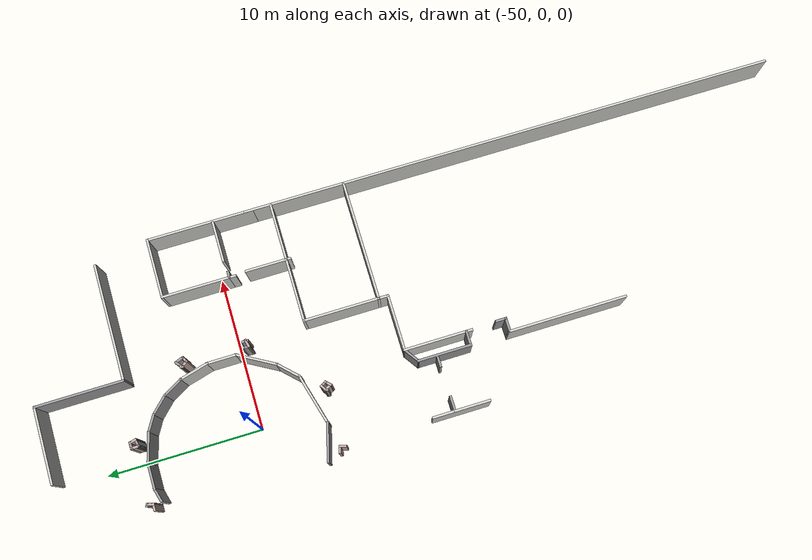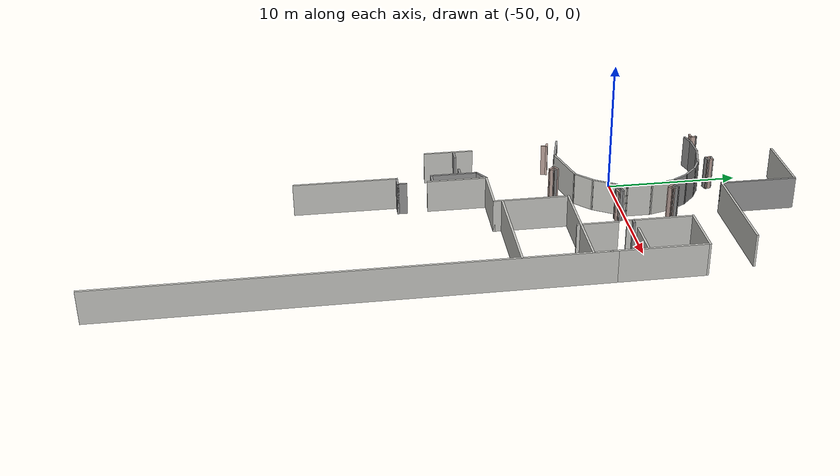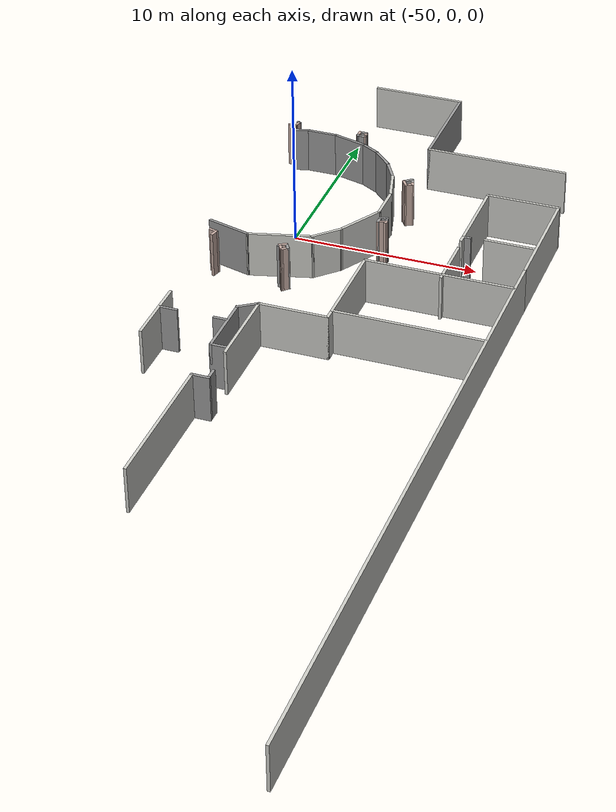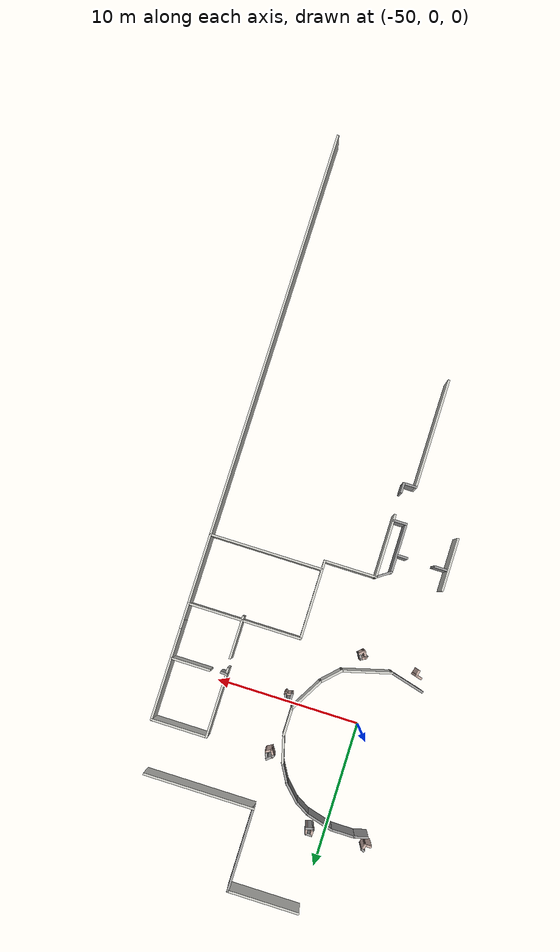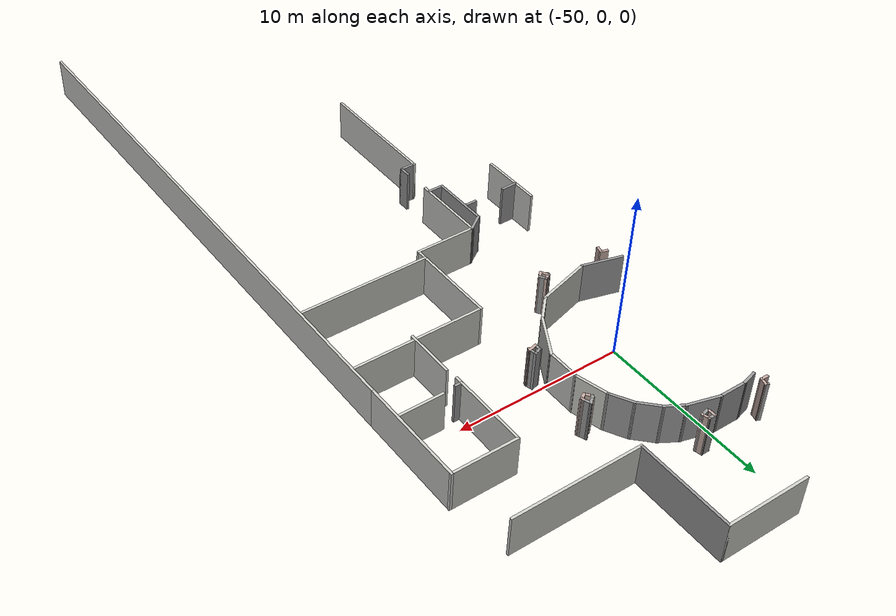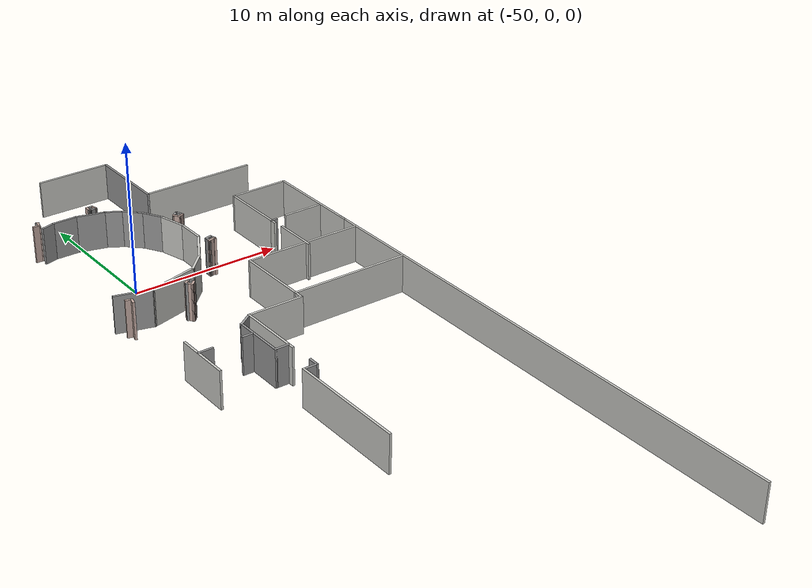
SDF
<sdf version="1.7">
 <model name="TD_n1">
  <pose>-37.6178 -12.8947 0 0 -0 0</pose>
  <link name="Wall_0">
   <collision name="Wall_0_Collision">
    <geometry><box><size>35.5 0.15 2.5</size></box></geometry>
    <pose>0 0 1.25 0 -0 0</pose>
   </collision>
   <visual name="Wall_0_Visual">
    <pose>0 0 1.25 0 -0 0</pose>
    <geometry><box><size>35.5 0.15 2.5</size></box></geometry>
    <material>
     <script><uri>file://media/materials/scripts/gazebo.material</uri><name>Gazebo/CeilingTiled</name></script>
     <ambient>1 1 1 1</ambient>
    </material>
    <meta><layer>0</layer></meta>
   </visual>
   <pose>0.95718 -7.55 0 0 -0 -1.5708</pose>
  </link>
  <link name="Wall_136">
   <collision name="Wall_136_Collision">
    <geometry><box><size>3.75 0.15 2.5</size></box></geometry>
    <pose>0 0 1.25 0 -0 0</pose>
   </collision>
   <visual name="Wall_136_Visual">
    <pose>0 0 1.25 0 -0 0</pose>
    <geometry><box><size>3.75 0.15 2.5</size></box></geometry>
    <material>
     <script><uri>file://media/materials/scripts/gazebo.material</uri><name>Gazebo/CeilingTiled</name></script>
     <ambient>1 1 1 1</ambient>
    </material>
    <meta><layer>0</layer></meta>
   </visual>
   <pose>-15.0402 0.724999 0 0 -0 -1.5708</pose>
  </link>
  <link name="Wall_157">
   <collision name="Wall_157_Collision">
    <geometry><box><size>1 0.15 2.5</size></box></geometry>
    <pose>0 0 1.25 0 -0 0</pose>
   </collision>
   <visual name="Wall_157_Visual">
    <pose>0 0 1.25 0 -0 0</pose>
    <geometry><box><size>1 0.15 2.5</size></box></geometry>
    <material>
     <script><uri>file://media/materials/scripts/gazebo.material</uri><name>Gazebo/Grey</name></script>
     <ambient>1 1 1 1</ambient>
    </material>
    <meta><layer>0</layer></meta>
   </visual>
   <pose>-10.9975 -1.00817 0 0 -0 0</pose>
  </link>
  <link name="Wall_159">
   <collision name="Wall_159_Collision">
    <geometry><box><size>3.54074 0.15 2.5</size></box></geometry>
    <pose>0 0 1.25 0 -0 0</pose>
   </collision>
   <visual name="Wall_159_Visual">
    <pose>0 0 1.25 0 -0 0</pose>
    <geometry><box><size>3.54074 0.15 2.5</size></box></geometry>
    <material>
     <script><uri>file://media/materials/scripts/gazebo.material</uri><name>Gazebo/Grey</name></script>
     <ambient>1 1 1 1</ambient>
    </material>
    <meta><layer>0</layer></meta>
   </visual>
   <pose>-11.4225 0.687201 0 0 -0 -1.5708</pose>
  </link>
  <link name="Wall_161">
   <collision name="Wall_161_Collision">
    <geometry><box><size>1.23577 0.15 2.5</size></box></geometry>
    <pose>0 0 1.25 0 -0 0</pose>
   </collision>
   <visual name="Wall_161_Visual">
    <pose>0 0 1.25 0 -0 0</pose>
    <geometry><box><size>1.23577 0.15 2.5</size></box></geometry>
    <material>
     <script><uri>file://media/materials/scripts/gazebo.material</uri><name>Gazebo/Grey</name></script>
     <ambient>1 1 1 1</ambient>
    </material>
    <meta><layer>0</layer></meta>
   </visual>
   <pose>-10.9749 2.68981 0 0 -0 0.601557</pose>
  </link>
  <link name="Wall_183">
   <collision name="Wall_183_Collision">
    <geometry><box><size>5 0.15 2.5</size></box></geometry>
    <pose>0 0 1.25 0 -0 0</pose>
   </collision>
   <visual name="Wall_183_Visual">
    <pose>0 0 1.25 0 -0 0</pose>
    <geometry><box><size>5 0.15 2.5</size></box></geometry>
    <material>
     <script><uri>file://media/materials/scripts/gazebo.material</uri><name>Gazebo/CeilingTiled</name></script>
     <ambient>1 1 1 1</ambient>
    </material>
    <meta><layer>0</layer></meta>
   </visual>
   <pose>-9.72371 25.6692 0 0 -0 0</pose>
  </link>
  <link name="Wall_184">
   <collision name="Wall_184_Collision">
    <geometry><box><size>5.75 0.15 2.5</size></box></geometry>
    <pose>0 0 1.25 0 -0 0</pose>
   </collision>
   <visual name="Wall_184_Visual">
    <pose>0 0 1.25 0 -0 0</pose>
    <geometry><box><size>5.75 0.15 2.5</size></box></geometry>
    <material>
     <script><uri>file://media/materials/scripts/gazebo.material</uri><name>Gazebo/Grey</name></script>
     <ambient>1 1 1 1</ambient>
    </material>
    <meta><layer>0</layer></meta>
   </visual>
   <pose>-7.29871 22.8692 0 0 -0 -1.5708</pose>
  </link>
  <link name="Wall_185">
   <collision name="Wall_185_Collision">
    <geometry><box><size>7.75 0.15 2.5</size></box></geometry>
    <pose>0 0 1.25 0 -0 0</pose>
   </collision>
   <visual name="Wall_185_Visual">
    <pose>0 0 1.25 0 -0 0</pose>
    <geometry><box><size>7.75 0.15 2.5</size></box></geometry>
    <material>
     <script><uri>file://media/materials/scripts/gazebo.material</uri><name>Gazebo/CeilingTiled</name></script>
     <ambient>1 1 1 1</ambient>
    </material>
    <meta><layer>0</layer></meta>
   </visual>
   <pose>-3.49871 20.0692 0 0 -0 0</pose>
  </link>
  <link name="Wall_187">
   <collision name="Wall_187_Collision">
    <geometry><box><size>3 0.15 2.5</size></box></geometry>
    <pose>0 0 1.25 0 -0 0</pose>
   </collision>
   <visual name="Wall_187_Visual">
    <pose>0 0 1.25 0 -0 0</pose>
    <geometry><box><size>3 0.15 2.5</size></box></geometry>
    <material>
     <script><uri>file://media/materials/scripts/gazebo.material</uri><name>Gazebo/CeilingTiled</name></script>
     <ambient>1 1 1 1</ambient>
    </material>
    <meta><layer>0</layer></meta>
   </visual>
   <pose>-2.81602 9.63563 0 0 -0 1.5708</pose>
  </link>
  <link name="Wall_190">
   <collision name="Wall_190_Collision">
    <geometry><box><size>7 0.15 2.5</size></box></geometry>
    <pose>0 0 1.25 0 -0 0</pose>
   </collision>
   <visual name="Wall_190_Visual">
    <pose>0 0 1.25 0 -0 0</pose>
    <geometry><box><size>7 0.15 2.5</size></box></geometry>
    <material>
     <script><uri>file://media/materials/scripts/gazebo.material</uri><name>Gazebo/CeilingTiled</name></script>
     <ambient>1 1 1 1</ambient>
    </material>
    <meta><layer>0</layer></meta>
   </visual>
   <pose>0.954552 13.0938 0 0 -0 1.5708</pose>
  </link>
  <link name="Wall_191">
   <collision name="Wall_191_Collision">
    <geometry><box><size>4 0.15 2.5</size></box></geometry>
    <pose>0 0 1.25 0 -0 0</pose>
   </collision>
   <visual name="Wall_191_Visual">
    <pose>0 0 1.25 0 -0 0</pose>
    <geometry><box><size>4 0.15 2.5</size></box></geometry>
    <material>
     <script><uri>file://media/materials/scripts/gazebo.material</uri><name>Gazebo/CeilingTiled</name></script>
     <ambient>1 1 1 1</ambient>
    </material>
    <meta><layer>0</layer></meta>
   </visual>
   <pose>-0.970448 16.5188 0 0 -0 3.14159</pose>
  </link>
  <link name="Wall_192">
   <collision name="Wall_192_Collision">
    <geometry><box><size>4.5 0.15 2.5</size></box></geometry>
    <pose>0 0 1.25 0 -0 0</pose>
   </collision>
   <visual name="Wall_192_Visual">
    <pose>0 0 1.25 0 -0 0</pose>
    <geometry><box><size>4.5 0.15 2.5</size></box></geometry>
    <material>
     <script><uri>file://media/materials/scripts/gazebo.material</uri><name>Gazebo/CeilingTiled</name></script>
     <ambient>1 1 1 1</ambient>
    </material>
    <meta><layer>0</layer></meta>
   </visual>
   <pose>-2.89545 14.3438 0 0 -0 -1.5708</pose>
  </link>
  <link name="Wall_197">
   <collision name="Wall_197_Collision">
    <geometry><box><size>0.5 0.15 2.5</size></box></geometry>
    <pose>0 0 1.25 0 -0 0</pose>
   </collision>
   <visual name="Wall_197_Visual">
    <pose>0 0 1.25 0 -0 0</pose>
    <geometry><box><size>0.5 0.15 2.5</size></box></geometry>
    <material>
     <script><uri>file://media/materials/scripts/gazebo.material</uri><name>Gazebo/Grey</name></script>
     <ambient>1 1 1 1</ambient>
    </material>
    <meta><layer>0</layer></meta>
   </visual>
   <pose>-2.72045 12.1688 0 0 -0 0</pose>
  </link>
  <link name="Wall_199">
   <collision name="Wall_199_Collision">
    <geometry><box><size>0.515229 0.15 2.5</size></box></geometry>
    <pose>0 0 1.25 0 -0 0</pose>
   </collision>
   <visual name="Wall_199_Visual">
    <pose>0 0 1.25 0 -0 0</pose>
    <geometry><box><size>0.515229 0.15 2.5</size></box></geometry>
    <material>
     <script><uri>file://media/materials/scripts/gazebo.material</uri><name>Gazebo/CeilingTiled</name></script>
     <ambient>1 1 1 1</ambient>
    </material>
    <meta><layer>0</layer></meta>
   </visual>
   <pose>-2.89812 11.9862 0 0 -0 1.55618</pose>
  </link>
  <link name="Wall_201">
   <collision name="Wall_201_Collision">
    <geometry><box><size>2.75 0.15 2.5</size></box></geometry>
    <pose>0 0 1.25 0 -0 0</pose>
   </collision>
   <visual name="Wall_201_Visual">
    <pose>0 0 1.25 0 -0 0</pose>
    <geometry><box><size>2.75 0.15 2.5</size></box></geometry>
    <material>
     <script><uri>file://media/materials/scripts/gazebo.material</uri><name>Gazebo/CeilingTiled</name></script>
     <ambient>1 1 1 1</ambient>
    </material>
    <meta><layer>0</layer></meta>
   </visual>
   <pose>-0.437191 12.261 0 0 -0 0</pose>
  </link>
  <link name="Wall_203">
   <collision name="Wall_203_Collision">
    <geometry><box><size>1 0.15 2.5</size></box></geometry>
    <pose>0 0 1.25 0 -0 0</pose>
   </collision>
   <visual name="Wall_203_Visual">
    <pose>0 0 1.25 0 -0 0</pose>
    <geometry><box><size>1 0.15 2.5</size></box></geometry>
    <material>
     <script><uri>file://media/materials/scripts/gazebo.material</uri><name>Gazebo/Grey</name></script>
     <ambient>1 1 1 1</ambient>
    </material>
    <meta><layer>0</layer></meta>
   </visual>
   <pose>-14.5643 1.14455 0 0 -0 0</pose>
  </link>
  <link name="Wall_205">
   <collision name="Wall_205_Collision">
    <geometry><box><size>0.75 0.15 2.5</size></box></geometry>
    <pose>0 0 1.25 0 -0 0</pose>
   </collision>
   <visual name="Wall_205_Visual">
    <pose>0 0 1.25 0 -0 0</pose>
    <geometry><box><size>0.75 0.15 2.5</size></box></geometry>
    <material>
     <script><uri>file://media/materials/scripts/gazebo.material</uri><name>Gazebo/Grey</name></script>
     <ambient>1 1 1 1</ambient>
    </material>
    <meta><layer>0</layer></meta>
   </visual>
   <pose>-11.8306 1.16615 0 0 -0 0</pose>
  </link>
  <link name="Wall_217">
   <collision name="Wall_217_Collision">
    <geometry><box><size>1 0.15 2.5</size></box></geometry>
    <pose>0 0 1.25 0 -0 0</pose>
   </collision>
   <visual name="Wall_217_Visual">
    <pose>0 0 1.25 0 -0 0</pose>
    <geometry><box><size>1 0.15 2.5</size></box></geometry>
    <material>
     <script><uri>file://media/materials/scripts/gazebo.material</uri><name>Gazebo/Grey</name></script>
     <ambient>1 1 1 1</ambient>
    </material>
    <meta><layer>0</layer></meta>
   </visual>
   <pose>-14.6253 19.7187 0 0 -0 0.261799</pose>
  </link>
  <link name="Wall_218">
   <collision name="Wall_218_Collision">
    <geometry><box><size>1.75 0.15 2.5</size></box></geometry>
    <pose>0 0 1.25 0 -0 0</pose>
   </collision>
   <visual name="Wall_218_Visual">
    <pose>0 0 1.25 0 -0 0</pose>
    <geometry><box><size>1.75 0.15 2.5</size></box></geometry>
    <material>
     <script><uri>file://media/materials/scripts/gazebo.material</uri><name>Gazebo/Grey</name></script>
     <ambient>1 1 1 1</ambient>
    </material>
    <meta><layer>0</layer></meta>
   </visual>
   <pose>-13.4148 19.8287 0 0 -0 0</pose>
  </link>
  <link name="Wall_219">
   <collision name="Wall_219_Collision">
    <geometry><box><size>2 0.15 2.5</size></box></geometry>
    <pose>0 0 1.25 0 -0 0</pose>
   </collision>
   <visual name="Wall_219_Visual">
    <pose>0 0 1.25 0 -0 0</pose>
    <geometry><box><size>2 0.15 2.5</size></box></geometry>
    <material>
     <script><uri>file://media/materials/scripts/gazebo.material</uri><name>Gazebo/Grey</name></script>
     <ambient>1 1 1 1</ambient>
    </material>
    <meta><layer>0</layer></meta>
   </visual>
   <pose>-11.7213 19.5893 0 0 -0 -0.261799</pose>
  </link>
  <link name="Wall_221">
   <collision name="Wall_221_Collision">
    <geometry><box><size>1.25 0.15 2.5</size></box></geometry>
    <pose>0 0 1.25 0 -0 0</pose>
   </collision>
   <visual name="Wall_221_Visual">
    <pose>0 0 1.25 0 -0 0</pose>
    <geometry><box><size>1.25 0.15 2.5</size></box></geometry>
    <material>
     <script><uri>file://media/materials/scripts/gazebo.material</uri><name>Gazebo/Grey</name></script>
     <ambient>1 1 1 1</ambient>
    </material>
    <meta><layer>0</layer></meta>
   </visual>
   <pose>-10.3515 19.0749 0 0 -0 -0.523599</pose>
  </link>
  <link name="Wall_222">
   <collision name="Wall_222_Collision">
    <geometry><box><size>1.5 0.15 2.5</size></box></geometry>
    <pose>0 0 1.25 0 -0 0</pose>
   </collision>
   <visual name="Wall_222_Visual">
    <pose>0 0 1.25 0 -0 0</pose>
    <geometry><box><size>1.5 0.15 2.5</size></box></geometry>
    <material>
     <script><uri>file://media/materials/scripts/gazebo.material</uri><name>Gazebo/Grey</name></script>
     <ambient>1 1 1 1</ambient>
    </material>
    <meta><layer>0</layer></meta>
   </visual>
   <pose>-9.39787 18.3226 0 0 -0 -0.785398</pose>
  </link>
  <link name="Wall_223">
   <collision name="Wall_223_Collision">
    <geometry><box><size>1.5 0.15 2.5</size></box></geometry>
    <pose>0 0 1.25 0 -0 0</pose>
   </collision>
   <visual name="Wall_223_Visual">
    <pose>0 0 1.25 0 -0 0</pose>
    <geometry><box><size>1.5 0.15 2.5</size></box></geometry>
    <material>
     <script><uri>file://media/materials/scripts/gazebo.material</uri><name>Gazebo/Grey</name></script>
     <ambient>1 1 1 1</ambient>
    </material>
    <meta><layer>0</layer></meta>
   </visual>
   <pose>-8.58308 17.2607 0 0 -0 -1.0472</pose>
  </link>
  <link name="Wall_224">
   <collision name="Wall_224_Collision">
    <geometry><box><size>2 0.15 2.5</size></box></geometry>
    <pose>0 0 1.25 0 -0 0</pose>
   </collision>
   <visual name="Wall_224_Visual">
    <pose>0 0 1.25 0 -0 0</pose>
    <geometry><box><size>2 0.15 2.5</size></box></geometry>
    <material>
     <script><uri>file://media/materials/scripts/gazebo.material</uri><name>Gazebo/CeilingTiled</name></script>
     <ambient>1 1 1 1</ambient>
    </material>
    <meta><layer>0</layer></meta>
   </visual>
   <pose>-8.00617 15.7826 0 0 -0 -1.309</pose>
  </link>
  <link name="Wall_225">
   <collision name="Wall_225_Collision">
    <geometry><box><size>2 0.15 2.5</size></box></geometry>
    <pose>0 0 1.25 0 -0 0</pose>
   </collision>
   <visual name="Wall_225_Visual">
    <pose>0 0 1.25 0 -0 0</pose>
    <geometry><box><size>2 0.15 2.5</size></box></geometry>
    <material>
     <script><uri>file://media/materials/scripts/gazebo.material</uri><name>Gazebo/CeilingTiled</name></script>
     <ambient>1 1 1 1</ambient>
    </material>
    <meta><layer>0</layer></meta>
   </visual>
   <pose>-7.76676 13.9642 0 0 -0 -1.5708</pose>
  </link>
  <link name="Wall_228">
   <collision name="Wall_228_Collision">
    <geometry><box><size>2.75 0.15 2.5</size></box></geometry>
    <pose>0 0 1.25 0 -0 0</pose>
   </collision>
   <visual name="Wall_228_Visual">
    <pose>0 0 1.25 0 -0 0</pose>
    <geometry><box><size>2.75 0.15 2.5</size></box></geometry>
    <material>
     <script><uri>file://media/materials/scripts/gazebo.material</uri><name>Gazebo/CeilingTiled</name></script>
     <ambient>1 1 1 1</ambient>
    </material>
    <meta><layer>0</layer></meta>
   </visual>
   <pose>-8.41676 11.9133 0 0 -0 -2.0944</pose>
  </link>
  <link name="Wall_231">
   <collision name="Wall_231_Collision">
    <geometry><box><size>1.75 0.15 2.5</size></box></geometry>
    <pose>0 0 1.25 0 -0 0</pose>
   </collision>
   <visual name="Wall_231_Visual">
    <pose>0 0 1.25 0 -0 0</pose>
    <geometry><box><size>1.75 0.15 2.5</size></box></geometry>
    <material>
     <script><uri>file://media/materials/scripts/gazebo.material</uri><name>Gazebo/CeilingTiled</name></script>
     <ambient>1 1 1 1</ambient>
    </material>
    <meta><layer>0</layer></meta>
   </visual>
   <pose>-9.63245 10.2218 0 0 -0 -2.35619</pose>
  </link>
  <link name="Wall_232">
   <collision name="Wall_232_Collision">
    <geometry><box><size>3.5 0.15 2.5</size></box></geometry>
    <pose>0 0 1.25 0 -0 0</pose>
   </collision>
   <visual name="Wall_232_Visual">
    <pose>0 0 1.25 0 -0 0</pose>
    <geometry><box><size>3.5 0.15 2.5</size></box></geometry>
    <material>
     <script><uri>file://media/materials/scripts/gazebo.material</uri><name>Gazebo/CeilingTiled</name></script>
     <ambient>1 1 1 1</ambient>
    </material>
    <meta><layer>0</layer></meta>
   </visual>
   <pose>-11.8161 9.2226 0 0 -0 -2.87979</pose>
  </link>
  <link name="Wall_233">
   <collision name="Wall_233_Collision">
    <geometry><box><size>2.5 0.15 2.5</size></box></geometry>
    <pose>0 0 1.25 0 -0 0</pose>
   </collision>
   <visual name="Wall_233_Visual">
    <pose>0 0 1.25 0 -0 0</pose>
    <geometry><box><size>2.5 0.15 2.5</size></box></geometry>
    <material>
     <script><uri>file://media/materials/scripts/gazebo.material</uri><name>Gazebo/Grey</name></script>
     <ambient>1 1 1 1</ambient>
    </material>
    <meta><layer>0</layer></meta>
   </visual>
   <pose>-14.5689 9.09319 0 0 -0 2.87979</pose>
  </link>
  <link name="Wall_253">
   <collision name="Wall_253_Collision">
    <geometry><box><size>0.5 0.15 2.5</size></box></geometry>
    <pose>0 0 1.25 0 -0 0</pose>
   </collision>
   <visual name="Wall_253_Visual">
    <pose>0 0 1.25 0 -0 0</pose>
    <geometry><box><size>0.5 0.15 2.5</size></box></geometry>
    <material>
     <script><uri>file://media/materials/scripts/gazebo.material</uri><name>Gazebo/Grey</name></script>
     <ambient>0.760784 0.662745 0.627451 1</ambient>
    </material>
    <meta><layer>0</layer></meta>
   </visual>
   <pose>-15.242 20.1169 0 0 -0 0</pose>
  </link>
  <link name="Wall_254">
   <collision name="Wall_254_Collision">
    <geometry><box><size>0.5 0.15 2.5</size></box></geometry>
    <pose>0 0 1.25 0 -0 0</pose>
   </collision>
   <visual name="Wall_254_Visual">
    <pose>0 0 1.25 0 -0 0</pose>
    <geometry><box><size>0.5 0.15 2.5</size></box></geometry>
    <material>
     <script><uri>file://media/materials/scripts/gazebo.material</uri><name>Gazebo/Grey</name></script>
     <ambient>0.760784 0.662745 0.627451 1</ambient>
    </material>
    <meta><layer>0</layer></meta>
   </visual>
   <pose>-15.0217 20.286 0 0 -0 1.309</pose>
  </link>
  <link name="Wall_255">
   <collision name="Wall_255_Collision">
    <geometry><box><size>0.25 0.15 2.5</size></box></geometry>
    <pose>0 0 1.25 0 -0 0</pose>
   </collision>
   <visual name="Wall_255_Visual">
    <pose>0 0 1.25 0 -0 0</pose>
    <geometry><box><size>0.25 0.15 2.5</size></box></geometry>
    <material>
     <script><uri>file://media/materials/scripts/gazebo.material</uri><name>Gazebo/Grey</name></script>
     <ambient>1 1 1 1</ambient>
    </material>
    <meta><layer>0</layer></meta>
   </visual>
   <pose>-15.0197 20.48 0 0 -0 2.61799</pose>
  </link>
  <link name="Wall_258">
   <collision name="Wall_258_Collision">
    <geometry><box><size>0.25 0.15 2.5</size></box></geometry>
    <pose>0 0 1.25 0 -0 0</pose>
   </collision>
   <visual name="Wall_258_Visual">
    <pose>0 0 1.25 0 -0 0</pose>
    <geometry><box><size>0.25 0.15 2.5</size></box></geometry>
    <material>
     <script><uri>file://media/materials/scripts/gazebo.material</uri><name>Gazebo/Grey</name></script>
     <ambient>1 1 1 1</ambient>
    </material>
    <meta><layer>0</layer></meta>
   </visual>
   <pose>-11.4392 20.1819 0 0 -0 2.0944</pose>
  </link>
  <link name="Wall_259">
   <collision name="Wall_259_Collision">
    <geometry><box><size>0.5 0.15 2.5</size></box></geometry>
    <pose>0 0 1.25 0 -0 0</pose>
   </collision>
   <visual name="Wall_259_Visual">
    <pose>0 0 1.25 0 -0 0</pose>
    <geometry><box><size>0.5 0.15 2.5</size></box></geometry>
    <material>
     <script><uri>file://media/materials/scripts/gazebo.material</uri><name>Gazebo/Grey</name></script>
     <ambient>0.760784 0.662745 0.627451 1</ambient>
    </material>
    <meta><layer>0</layer></meta>
   </visual>
   <pose>-11.4642 20.4002 0 0 -0 1.5708</pose>
  </link>
  <link name="Wall_260">
   <collision name="Wall_260_Collision">
    <geometry><box><size>0.5 0.15 2.5</size></box></geometry>
    <pose>0 0 1.25 0 -0 0</pose>
   </collision>
   <visual name="Wall_260_Visual">
    <pose>0 0 1.25 0 -0 0</pose>
    <geometry><box><size>0.5 0.15 2.5</size></box></geometry>
    <material>
     <script><uri>file://media/materials/scripts/gazebo.material</uri><name>Gazebo/Grey</name></script>
     <ambient>1 1 1 1</ambient>
    </material>
    <meta><layer>0</layer></meta>
   </visual>
   <pose>-11.2892 20.5752 0 0 -0 0</pose>
  </link>
  <link name="Wall_261">
   <collision name="Wall_261_Collision">
    <geometry><box><size>0.5 0.15 2.5</size></box></geometry>
    <pose>0 0 1.25 0 -0 0</pose>
   </collision>
   <visual name="Wall_261_Visual">
    <pose>0 0 1.25 0 -0 0</pose>
    <geometry><box><size>0.5 0.15 2.5</size></box></geometry>
    <material>
     <script><uri>file://media/materials/scripts/gazebo.material</uri><name>Gazebo/Grey</name></script>
     <ambient>0.760784 0.662745 0.627451 1</ambient>
    </material>
    <meta><layer>0</layer></meta>
   </visual>
   <pose>-11.0689 20.4062 0 0 -0 -1.309</pose>
  </link>
  <link name="Wall_262">
   <collision name="Wall_262_Collision">
    <geometry><box><size>0.552822 0.15 2.5</size></box></geometry>
    <pose>0 0 1.25 0 -0 0</pose>
   </collision>
   <visual name="Wall_262_Visual">
    <pose>0 0 1.25 0 -0 0</pose>
    <geometry><box><size>0.552822 0.15 2.5</size></box></geometry>
    <material>
     <script><uri>file://media/materials/scripts/gazebo.material</uri><name>Gazebo/Grey</name></script>
     <ambient>1 1 1 1</ambient>
    </material>
    <meta><layer>0</layer></meta>
   </visual>
   <pose>-11.2189 20.1879 0 0 -0 -2.89449</pose>
  </link>
  <link name="Wall_264">
   <collision name="Wall_264_Collision">
    <geometry><box><size>0.230348 0.15 2.5</size></box></geometry>
    <pose>0 0 1.25 0 -0 0</pose>
   </collision>
   <visual name="Wall_264_Visual">
    <pose>0 0 1.25 0 -0 0</pose>
    <geometry><box><size>0.230348 0.15 2.5</size></box></geometry>
    <material>
     <script><uri>file://media/materials/scripts/gazebo.material</uri><name>Gazebo/Grey</name></script>
     <ambient>0.760784 0.662745 0.627451 1</ambient>
    </material>
    <meta><layer>0</layer></meta>
   </visual>
   <pose>-7.5007 16.4221 0 0 -0 -1.86833</pose>
  </link>
  <link name="Wall_265">
   <collision name="Wall_265_Collision">
    <geometry><box><size>0.543225 0.15 2.5</size></box></geometry>
    <pose>0 0 1.25 0 -0 0</pose>
   </collision>
   <visual name="Wall_265_Visual">
    <pose>0 0 1.25 0 -0 0</pose>
    <geometry><box><size>0.543225 0.15 2.5</size></box></geometry>
    <material>
     <script><uri>file://media/materials/scripts/gazebo.material</uri><name>Gazebo/Grey</name></script>
     <ambient>0.760784 0.662745 0.627451 1</ambient>
    </material>
    <meta><layer>0</layer></meta>
   </visual>
   <pose>-7.40026 16.2222 0 0 -0 -0.963365</pose>
  </link>
  <link name="Wall_266">
   <collision name="Wall_266_Collision">
    <geometry><box><size>0.5 0.15 2.5</size></box></geometry>
    <pose>0 0 1.25 0 -0 0</pose>
   </collision>
   <visual name="Wall_266_Visual">
    <pose>0 0 1.25 0 -0 0</pose>
    <geometry><box><size>0.5 0.15 2.5</size></box></geometry>
    <material>
     <script><uri>file://media/materials/scripts/gazebo.material</uri><name>Gazebo/Grey</name></script>
     <ambient>0.760784 0.662745 0.627451 1</ambient>
    </material>
    <meta><layer>0</layer></meta>
   </visual>
   <pose>-7.13649 16.1483 0 0 -0 0.523599</pose>
  </link>
  <link name="Wall_267">
   <collision name="Wall_267_Collision">
    <geometry><box><size>0.25 0.15 2.5</size></box></geometry>
    <pose>0 0 1.25 0 -0 0</pose>
   </collision>
   <visual name="Wall_267_Visual">
    <pose>0 0 1.25 0 -0 0</pose>
    <geometry><box><size>0.25 0.15 2.5</size></box></geometry>
    <material>
     <script><uri>file://media/materials/scripts/gazebo.material</uri><name>Gazebo/Grey</name></script>
     <ambient>0.760784 0.662745 0.627451 1</ambient>
    </material>
    <meta><layer>0</layer></meta>
   </visual>
   <pose>-6.99787 16.2841 0 0 -0 1.8326</pose>
  </link>
  <link name="Wall_268">
   <collision name="Wall_268_Collision">
    <geometry><box><size>0.534269 0.15 2.5</size></box></geometry>
    <pose>0 0 1.25 0 -0 0</pose>
   </collision>
   <visual name="Wall_268_Visual">
    <pose>0 0 1.25 0 -0 0</pose>
    <geometry><box><size>0.534269 0.15 2.5</size></box></geometry>
    <material>
     <script><uri>file://media/materials/scripts/gazebo.material</uri><name>Gazebo/Grey</name></script>
     <ambient>1 1 1 1</ambient>
    </material>
    <meta><layer>0</layer></meta>
   </visual>
   <pose>-7.08082 16.5113 0 0 -0 1.94377</pose>
  </link>
  <link name="Wall_269">
   <collision name="Wall_269_Collision">
    <geometry><box><size>0.62409 0.15 2.5</size></box></geometry>
    <pose>0 0 1.25 0 -0 0</pose>
   </collision>
   <visual name="Wall_269_Visual">
    <pose>0 0 1.25 0 -0 0</pose>
    <geometry><box><size>0.62409 0.15 2.5</size></box></geometry>
    <material>
     <script><uri>file://media/materials/scripts/gazebo.material</uri><name>Gazebo/Grey</name></script>
     <ambient>1 1 1 1</ambient>
    </material>
    <meta><layer>0</layer></meta>
   </visual>
   <pose>-7.34154 16.5469 0 0 -0 -2.43844</pose>
  </link>
  <link name="Wall_271">
   <collision name="Wall_271_Collision">
    <geometry><box><size>0.25 0.15 2.5</size></box></geometry>
    <pose>0 0 1.25 0 -0 0</pose>
   </collision>
   <visual name="Wall_271_Visual">
    <pose>0 0 1.25 0 -0 0</pose>
    <geometry><box><size>0.25 0.15 2.5</size></box></geometry>
    <material>
     <script><uri>file://media/materials/scripts/gazebo.material</uri><name>Gazebo/Grey</name></script>
     <ambient>0.760784 0.662745 0.627451 1</ambient>
    </material>
    <meta><layer>0</layer></meta>
   </visual>
   <pose>-7.08048 12.1979 0 0 -0 1.309</pose>
  </link>
  <link name="Wall_272">
   <collision name="Wall_272_Collision">
    <geometry><box><size>0.5 0.15 2.5</size></box></geometry>
    <pose>0 0 1.25 0 -0 0</pose>
   </collision>
   <visual name="Wall_272_Visual">
    <pose>0 0 1.25 0 -0 0</pose>
    <geometry><box><size>0.5 0.15 2.5</size></box></geometry>
    <material>
     <script><uri>file://media/materials/scripts/gazebo.material</uri><name>Gazebo/Grey</name></script>
     <ambient>1 1 1 1</ambient>
    </material>
    <meta><layer>0</layer></meta>
   </visual>
   <pose>-7.11283 12.4152 0 0 -0 1.8326</pose>
  </link>
  <link name="Wall_273">
   <collision name="Wall_273_Collision">
    <geometry><box><size>0.5 0.15 2.5</size></box></geometry>
    <pose>0 0 1.25 0 -0 0</pose>
   </collision>
   <visual name="Wall_273_Visual">
    <pose>0 0 1.25 0 -0 0</pose>
    <geometry><box><size>0.5 0.15 2.5</size></box></geometry>
    <material>
     <script><uri>file://media/materials/scripts/gazebo.material</uri><name>Gazebo/Grey</name></script>
     <ambient>1 1 1 1</ambient>
    </material>
    <meta><layer>0</layer></meta>
   </visual>
   <pose>-7.32717 12.539 0 0 -0 -2.87979</pose>
  </link>
  <link name="Wall_274">
   <collision name="Wall_274_Collision">
    <geometry><box><size>0.5 0.15 2.5</size></box></geometry>
    <pose>0 0 1.25 0 -0 0</pose>
   </collision>
   <visual name="Wall_274_Visual">
    <pose>0 0 1.25 0 -0 0</pose>
    <geometry><box><size>0.5 0.15 2.5</size></box></geometry>
    <material>
     <script><uri>file://media/materials/scripts/gazebo.material</uri><name>Gazebo/Grey</name></script>
     <ambient>1 1 1 1</ambient>
    </material>
    <meta><layer>0</layer></meta>
   </visual>
   <pose>-7.4962 12.3187 0 0 -0 -1.5708</pose>
  </link>
  <link name="Wall_275">
   <collision name="Wall_275_Collision">
    <geometry><box><size>0.590748 0.15 2.5</size></box></geometry>
    <pose>0 0 1.25 0 -0 0</pose>
   </collision>
   <visual name="Wall_275_Visual">
    <pose>0 0 1.25 0 -0 0</pose>
    <geometry><box><size>0.590748 0.15 2.5</size></box></geometry>
    <material>
     <script><uri>file://media/materials/scripts/gazebo.material</uri><name>Gazebo/Grey</name></script>
     <ambient>0.760784 0.662745 0.627451 1</ambient>
    </material>
    <meta><layer>0</layer></meta>
   </visual>
   <pose>-7.28187 12.1949 0 0 -0 0.234738</pose>
  </link>
  <link name="Wall_278">
   <collision name="Wall_278_Collision">
    <geometry><box><size>0.5 0.15 2.5</size></box></geometry>
    <pose>0 0 1.25 0 -0 0</pose>
   </collision>
   <visual name="Wall_278_Visual">
    <pose>0 0 1.25 0 -0 0</pose>
    <geometry><box><size>0.5 0.15 2.5</size></box></geometry>
    <material>
     <script><uri>file://media/materials/scripts/gazebo.material</uri><name>Gazebo/Grey</name></script>
     <ambient>0.760784 0.662745 0.627451 1</ambient>
    </material>
    <meta><layer>0</layer></meta>
   </visual>
   <pose>-15.0713 8.30346 0 0 -0 1.309</pose>
  </link>
  <link name="Wall_279">
   <collision name="Wall_279_Collision">
    <geometry><box><size>0.5 0.15 2.5</size></box></geometry>
    <pose>0 0 1.25 0 -0 0</pose>
   </collision>
   <visual name="Wall_279_Visual">
    <pose>0 0 1.25 0 -0 0</pose>
    <geometry><box><size>0.5 0.15 2.5</size></box></geometry>
    <material>
     <script><uri>file://media/materials/scripts/gazebo.material</uri><name>Gazebo/Grey</name></script>
     <ambient>0.760784 0.662745 0.627451 1</ambient>
    </material>
    <meta><layer>0</layer></meta>
   </visual>
   <pose>-15.195 8.51779 0 0 -0 2.87979</pose>
  </link>
  <link name="Wall_282">
   <collision name="Wall_282_Collision">
    <geometry><box><size>0.25 0.15 2.5</size></box></geometry>
    <pose>0 0 1.25 0 -0 0</pose>
   </collision>
   <visual name="Wall_282_Visual">
    <pose>0 0 1.25 0 -0 0</pose>
    <geometry><box><size>0.25 0.15 2.5</size></box></geometry>
    <material>
     <script><uri>file://media/materials/scripts/gazebo.material</uri><name>Gazebo/Grey</name></script>
     <ambient>1 1 1 1</ambient>
    </material>
    <meta><layer>0</layer></meta>
   </visual>
   <pose>-11.4961 8.30204 0 0 -0 1.309</pose>
  </link>
  <link name="Wall_283">
   <collision name="Wall_283_Collision">
    <geometry><box><size>0.5 0.15 2.5</size></box></geometry>
    <pose>0 0 1.25 0 -0 0</pose>
   </collision>
   <visual name="Wall_283_Visual">
    <pose>0 0 1.25 0 -0 0</pose>
    <geometry><box><size>0.5 0.15 2.5</size></box></geometry>
    <material>
     <script><uri>file://media/materials/scripts/gazebo.material</uri><name>Gazebo/Grey</name></script>
     <ambient>0.760784 0.662745 0.627451 1</ambient>
    </material>
    <meta><layer>0</layer></meta>
   </visual>
   <pose>-11.3316 8.43784 0 0 -0 0.523599</pose>
  </link>
  <link name="Wall_284">
   <collision name="Wall_284_Collision">
    <geometry><box><size>0.5 0.15 2.5</size></box></geometry>
    <pose>0 0 1.25 0 -0 0</pose>
   </collision>
   <visual name="Wall_284_Visual">
    <pose>0 0 1.25 0 -0 0</pose>
    <geometry><box><size>0.5 0.15 2.5</size></box></geometry>
    <material>
     <script><uri>file://media/materials/scripts/gazebo.material</uri><name>Gazebo/Grey</name></script>
     <ambient>1 1 1 1</ambient>
    </material>
    <meta><layer>0</layer></meta>
   </visual>
   <pose>-11.0926 8.37378 0 0 -0 -1.0472</pose>
  </link>
  <link name="Wall_285">
   <collision name="Wall_285_Collision">
    <geometry><box><size>0.5 0.15 2.5</size></box></geometry>
    <pose>0 0 1.25 0 -0 0</pose>
   </collision>
   <visual name="Wall_285_Visual">
    <pose>0 0 1.25 0 -0 0</pose>
    <geometry><box><size>0.5 0.15 2.5</size></box></geometry>
    <material>
     <script><uri>file://media/materials/scripts/gazebo.material</uri><name>Gazebo/Grey</name></script>
     <ambient>0.760784 0.662745 0.627451 1</ambient>
    </material>
    <meta><layer>0</layer></meta>
   </visual>
   <pose>-11.1288 8.09849 0 0 -0 -2.35619</pose>
  </link>
  <link name="Wall_286">
   <collision name="Wall_286_Collision">
    <geometry><box><size>0.590748 0.15 2.5</size></box></geometry>
    <pose>0 0 1.25 0 -0 0</pose>
   </collision>
   <visual name="Wall_286_Visual">
    <pose>0 0 1.25 0 -0 0</pose>
    <geometry><box><size>0.590748 0.15 2.5</size></box></geometry>
    <material>
     <script><uri>file://media/materials/scripts/gazebo.material</uri><name>Gazebo/Grey</name></script>
     <ambient>0.760784 0.662745 0.627451 1</ambient>
    </material>
    <meta><layer>0</layer></meta>
   </visual>
   <pose>-11.3679 8.16254 0 0 -0 2.12146</pose>
  </link>
  <link name="Wall_37">
   <collision name="Wall_37_Collision">
    <geometry><box><size>7.75 0.15 2.5</size></box></geometry>
    <pose>0 0 1.25 0 -0 0</pose>
   </collision>
   <visual name="Wall_37_Visual">
    <pose>0 0 1.25 0 -0 0</pose>
    <geometry><box><size>7.75 0.15 2.5</size></box></geometry>
    <material>
     <script><uri>file://media/materials/scripts/gazebo.material</uri><name>Gazebo/CeilingTiled</name></script>
     <ambient>1 1 1 1</ambient>
    </material>
    <meta><layer>0</layer></meta>
   </visual>
   <pose>-11.3138 -7.40232 0 0 -0 1.5708</pose>
  </link>
  <link name="Wall_38">
   <collision name="Wall_38_Collision">
    <geometry><box><size>1 0.15 2.5</size></box></geometry>
    <pose>0 0 1.25 0 -0 0</pose>
   </collision>
   <visual name="Wall_38_Visual">
    <pose>0 0 1.25 0 -0 0</pose>
    <geometry><box><size>1 0.15 2.5</size></box></geometry>
    <material>
     <script><uri>file://media/materials/scripts/gazebo.material</uri><name>Gazebo/Grey</name></script>
     <ambient>1 1 1 1</ambient>
    </material>
    <meta><layer>0</layer></meta>
   </visual>
   <pose>-10.8888 -3.60232 0 0 -0 0</pose>
  </link>
  <link name="Wall_39">
   <collision name="Wall_39_Collision">
    <geometry><box><size>0.75 0.15 2.5</size></box></geometry>
    <pose>0 0 1.25 0 -0 0</pose>
   </collision>
   <visual name="Wall_39_Visual">
    <pose>0 0 1.25 0 -0 0</pose>
    <geometry><box><size>0.75 0.15 2.5</size></box></geometry>
    <material>
     <script><uri>file://media/materials/scripts/gazebo.material</uri><name>Gazebo/Grey</name></script>
     <ambient>1 1 1 1</ambient>
    </material>
    <meta><layer>0</layer></meta>
   </visual>
   <pose>-10.4638 -3.30232 0 0 -0 1.5708</pose>
  </link>
  <link name="Wall_46">
   <collision name="Wall_46_Collision">
    <geometry><box><size>4.5 0.15 2.5</size></box></geometry>
    <pose>0 0 1.25 0 -0 0</pose>
   </collision>
   <visual name="Wall_46_Visual">
    <pose>0 0 1.25 0 -0 0</pose>
    <geometry><box><size>4.5 0.15 2.5</size></box></geometry>
    <material>
     <script><uri>file://media/materials/scripts/gazebo.material</uri><name>Gazebo/CeilingTiled</name></script>
     <ambient>1 1 1 1</ambient>
    </material>
    <meta><layer>0</layer></meta>
   </visual>
   <pose>-10.5273 0.822039 0 0 -0 1.5708</pose>
  </link>
  <link name="Wall_47">
   <collision name="Wall_47_Collision">
    <geometry><box><size>3.75 0.15 2.5</size></box></geometry>
    <pose>0 0 1.25 0 -0 0</pose>
   </collision>
   <visual name="Wall_47_Visual">
    <pose>0 0 1.25 0 -0 0</pose>
    <geometry><box><size>3.75 0.15 2.5</size></box></geometry>
    <material>
     <script><uri>file://media/materials/scripts/gazebo.material</uri><name>Gazebo/CeilingTiled</name></script>
     <ambient>1 1 1 1</ambient>
    </material>
    <meta><layer>0</layer></meta>
   </visual>
   <pose>-8.72734 2.99704 0 0 -0 0</pose>
  </link>
  <link name="Wall_48">
   <collision name="Wall_48_Collision">
    <geometry><box><size>0.75 0.15 2.5</size></box></geometry>
    <pose>0 0 1.25 0 -0 0</pose>
   </collision>
   <visual name="Wall_48_Visual">
    <pose>0 0 1.25 0 -0 0</pose>
    <geometry><box><size>0.75 0.15 2.5</size></box></geometry>
    <material>
     <script><uri>file://media/materials/scripts/gazebo.material</uri><name>Gazebo/CeilingTiled</name></script>
     <ambient>1 1 1 1</ambient>
    </material>
    <meta><layer>0</layer></meta>
   </visual>
   <pose>-6.92734 3.29704 0 0 -0 1.5708</pose>
  </link>
  <link name="Wall_49">
   <collision name="Wall_49_Collision">
    <geometry><box><size>8 0.15 2.5</size></box></geometry>
    <pose>0 0 1.25 0 -0 0</pose>
   </collision>
   <visual name="Wall_49_Visual">
    <pose>0 0 1.25 0 -0 0</pose>
    <geometry><box><size>8 0.15 2.5</size></box></geometry>
    <material>
     <script><uri>file://media/materials/scripts/gazebo.material</uri><name>Gazebo/CeilingTiled</name></script>
     <ambient>1 1 1 1</ambient>
    </material>
    <meta><layer>0</layer></meta>
   </visual>
   <pose>-3.00235 3.59704 0 0 -0 0</pose>
  </link>
  <link name="Wall_51">
   <collision name="Wall_51_Collision">
    <geometry><box><size>5 0.15 2.5</size></box></geometry>
    <pose>0 0 1.25 0 -0 0</pose>
   </collision>
   <visual name="Wall_51_Visual">
    <pose>0 0 1.25 0 -0 0</pose>
    <geometry><box><size>5 0.15 2.5</size></box></geometry>
    <material>
     <script><uri>file://media/materials/scripts/gazebo.material</uri><name>Gazebo/CeilingTiled</name></script>
     <ambient>1 1 1 1</ambient>
    </material>
    <meta><layer>0</layer></meta>
   </visual>
   <pose>-6.92734 6.02204 0 0 -0 1.5708</pose>
  </link>
  <link name="Wall_52">
   <collision name="Wall_52_Collision">
    <geometry><box><size>8 0.15 2.5</size></box></geometry>
    <pose>0 0 1.25 0 -0 0</pose>
   </collision>
   <visual name="Wall_52_Visual">
    <pose>0 0 1.25 0 -0 0</pose>
    <geometry><box><size>8 0.15 2.5</size></box></geometry>
    <material>
     <script><uri>file://media/materials/scripts/gazebo.material</uri><name>Gazebo/CeilingTiled</name></script>
     <ambient>1 1 1 1</ambient>
    </material>
    <meta><layer>0</layer></meta>
   </visual>
   <pose>-3.00235 8.44704 0 0 -0 0</pose>
  </link>
  <static>1</static>
 </model>
</sdf>
